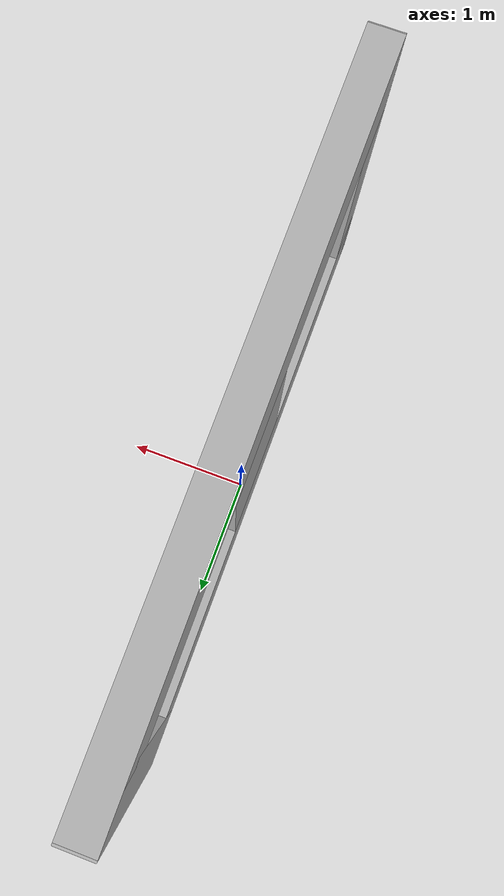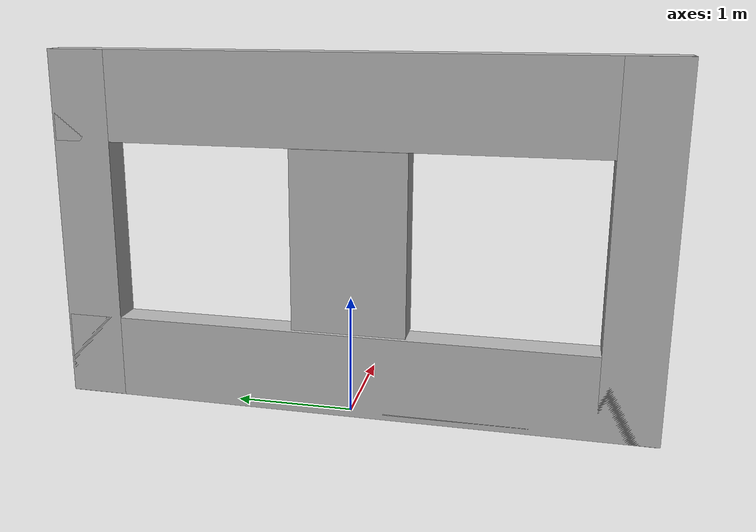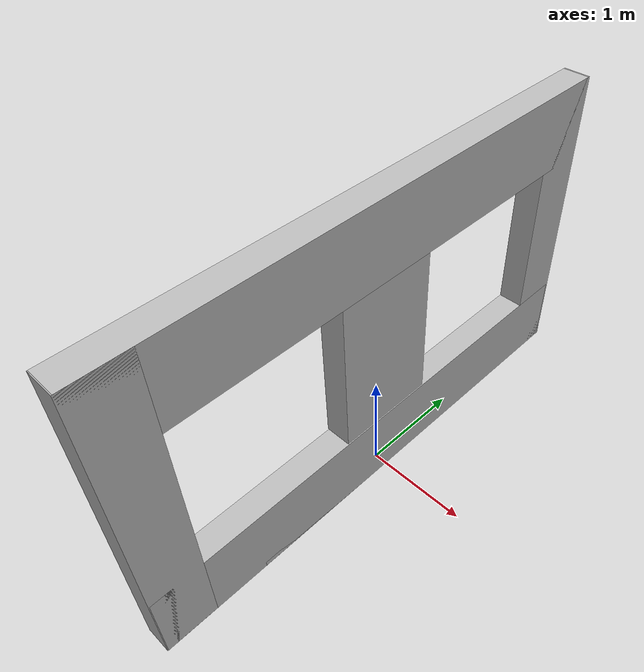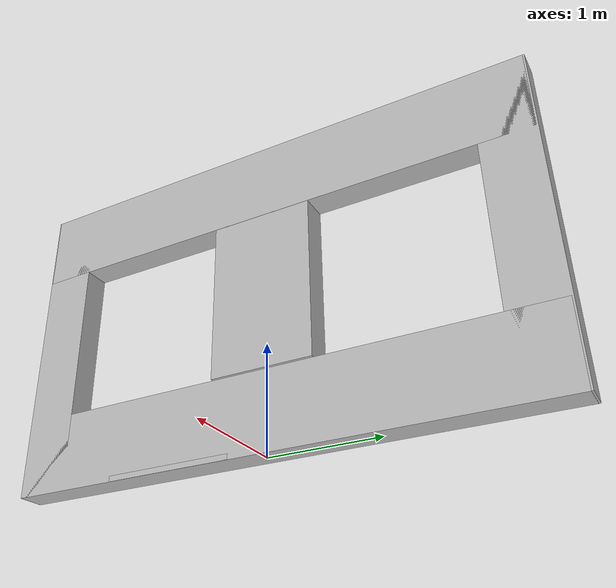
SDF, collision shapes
<sdf version="1.5">
  <model name="Robot">
    <link name="Robot">
      <visual name="mesh">
        <pose>0.0 0. 0. 0.0 0.0 -1.57</pose>
        <geometry>
          <mesh>
            <uri>wall_with_windows.obj</uri>
          </mesh>
        </geometry>
      </visual>
      <collision name="collision_Wall.012">
        <pose>0.0 -2.261723518371582 1.5 0.0 0.0 0.0</pose>
        <geometry>
          <box>
            <size>0.25 0.49168092012405396 3.0</size>
          </box>
        </geometry>
      </collision>
      <collision name="collision_Wall.015">
        <pose>0.0 -0.8953216671943665 0.02500000037252903 0.0 0.0 0.0</pose>
        <geometry>
          <box>
            <size>0.25 1.195443034172058 0.05000000074505806</size>
          </box>
        </geometry>
      </collision>
      <collision name="collision_Wall.016">
        <pose>0.0 0.0 2.625 0.0 0.0 0.0</pose>
        <geometry>
          <box>
            <size>0.25 5.0 0.7505852580070496</size>
          </box>
        </geometry>
      </collision>
      <collision name="collision_Wall.017">
        <pose>0.0 0.0 1.4886338710784912 0.0 0.0 0.0</pose>
        <geometry>
          <box>
            <size>0.25 0.9615271687507629 1.5181039571762085</size>
          </box>
        </geometry>
      </collision>
      <collision name="collision_Wall.013">
        <pose>0.0 0.0 0.35619157552719116 0.0 0.0 0.0</pose>
        <geometry>
          <box>
            <size>0.25 5.0 0.7154595851898193</size>
          </box>
        </geometry>
      </collision>
      <collision name="collision_Wall.004">
        <pose>0.0 2.269747257232666 1.5 0.0 0.0 0.0</pose>
        <geometry>
          <box>
            <size>0.25 0.49168092012405396 3.0</size>
          </box>
        </geometry>
      </collision>
    </link>
    <frame name="frame_InWindow1">
      <pose>0.0 1.25 1.5 0.0 0.0 0.0</pose>
    </frame>
    <frame name="frame_InWindow2">
      <pose>0.0 -1.25 1.5 0.0 0.0 0.0</pose>
    </frame>
  </model>
</sdf>
